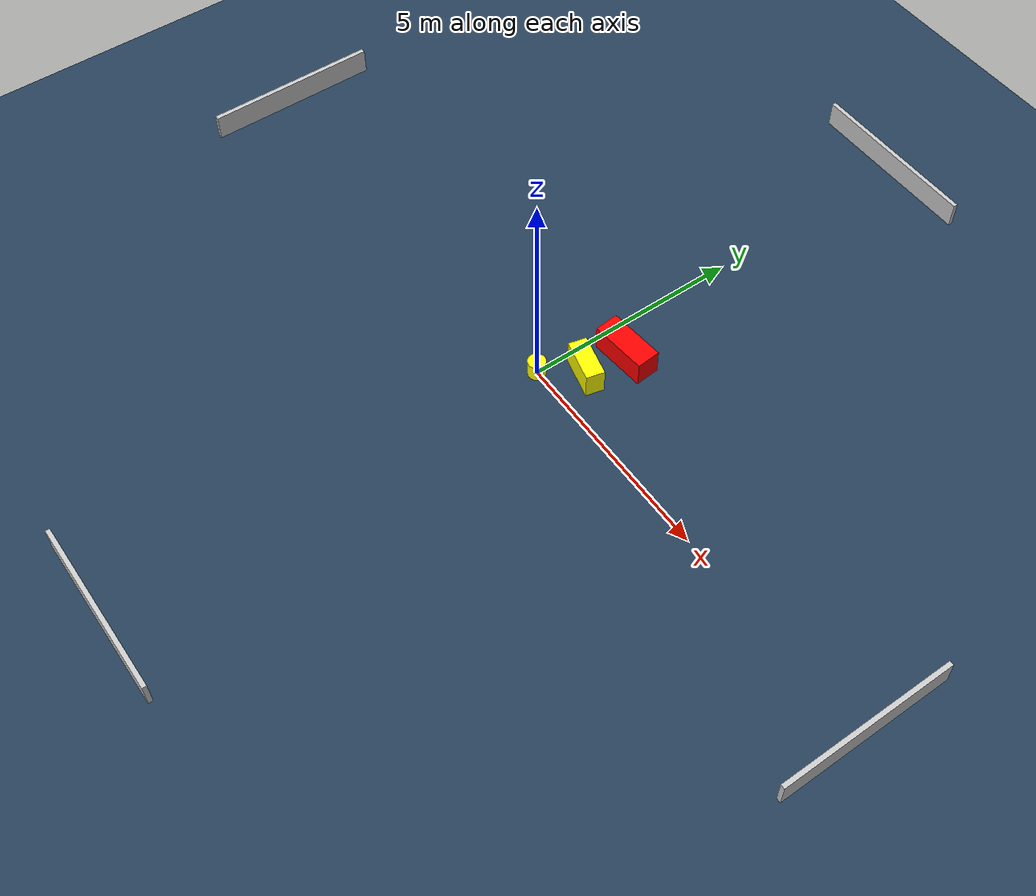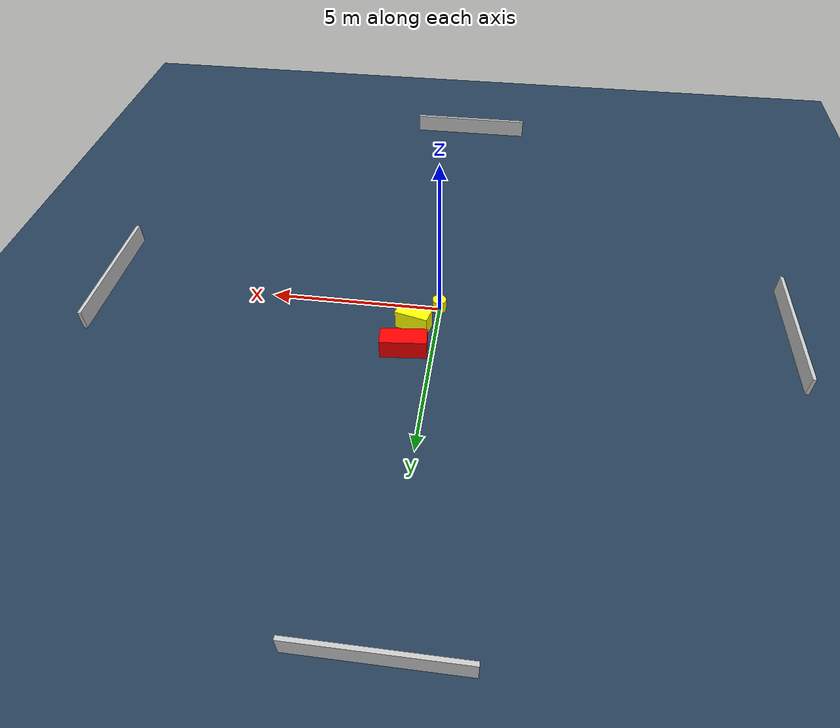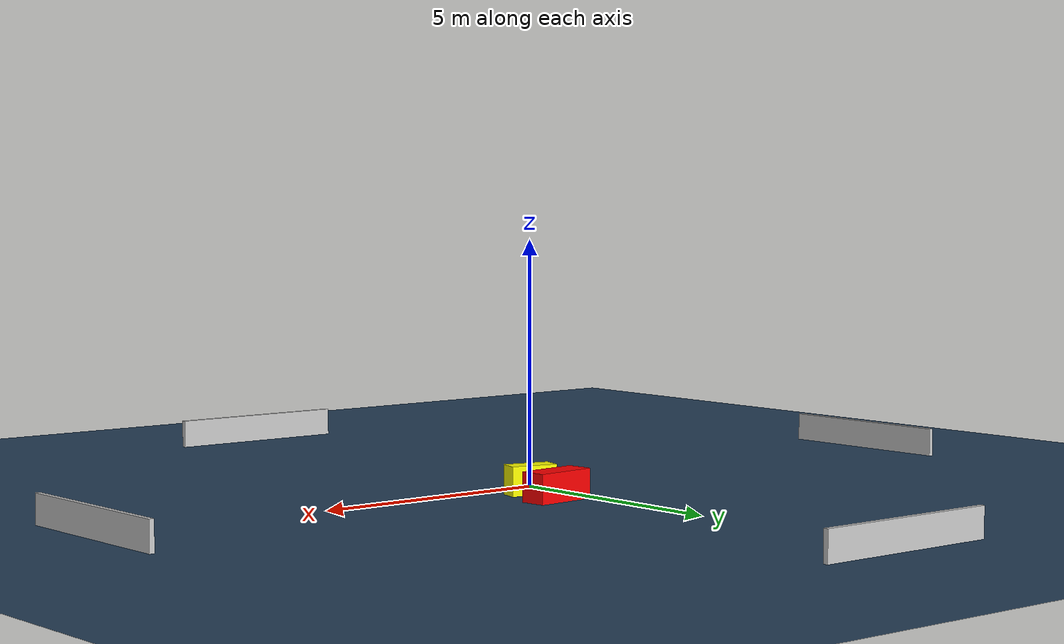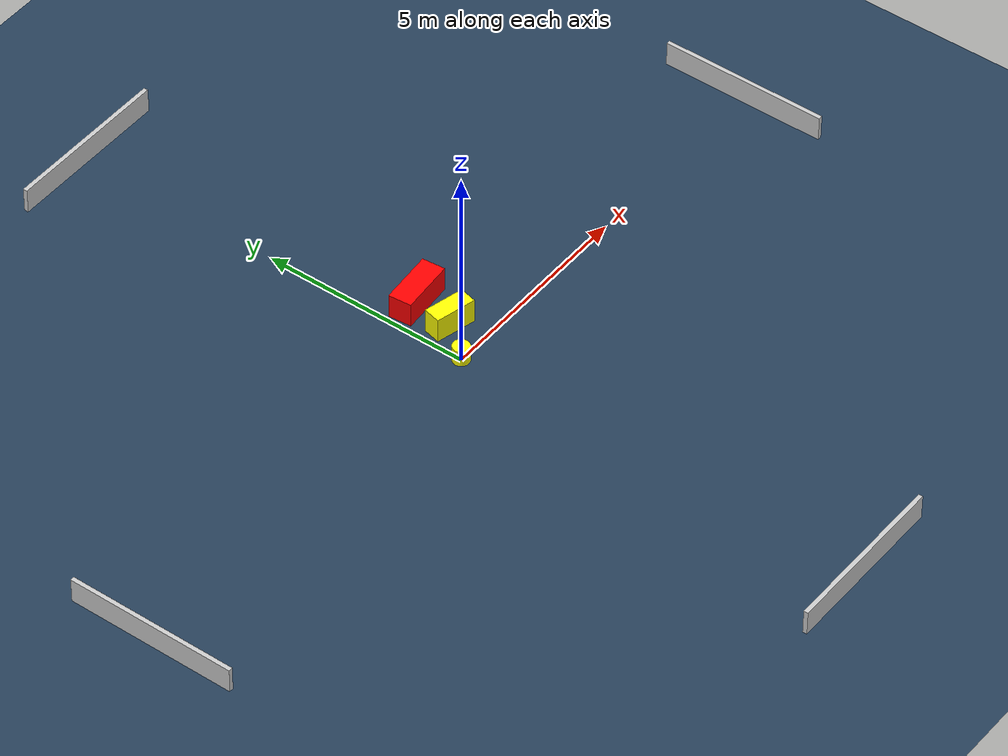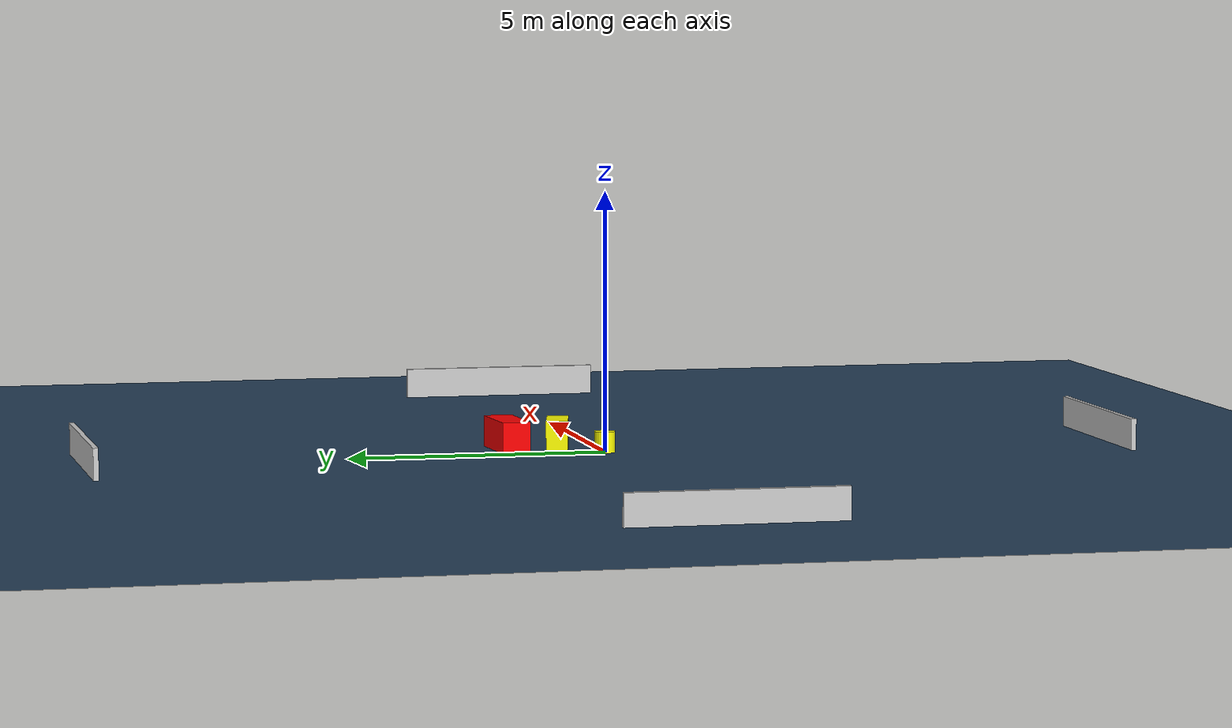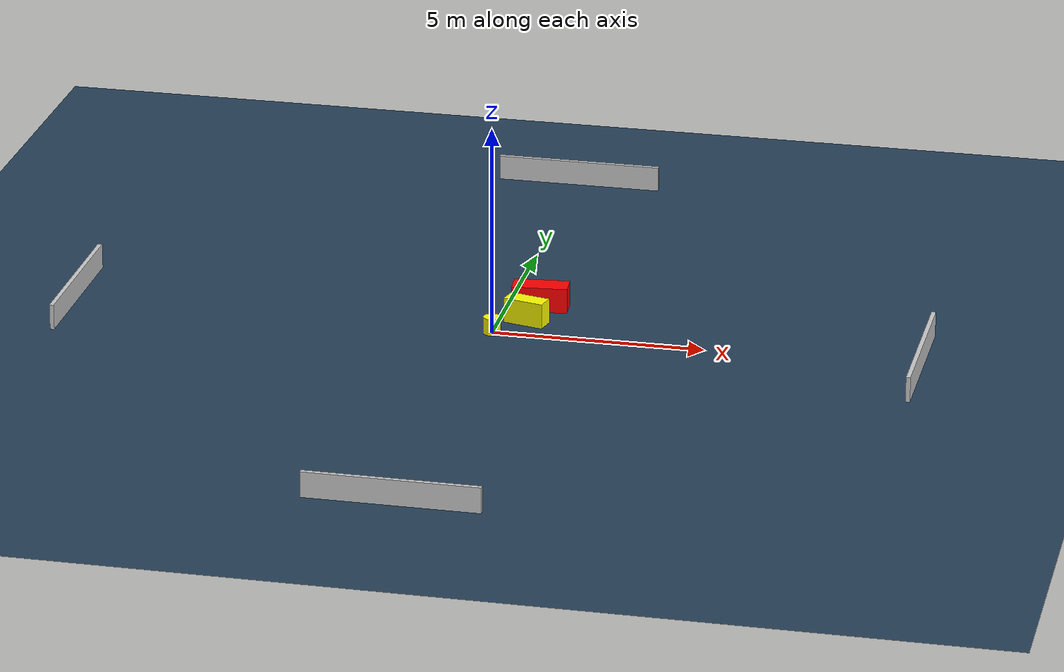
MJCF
<?xml version="1.0" ?>
<mujoco model="generated_environment">
  <option timestep="0.01" integrator="RK4" cone="elliptic"/>
  <default>
    <geom density="1"/>
  </default>
  <asset>
    <texture builtin="gradient" height="3072" name="skybox" rgb1="0.3 0.5 0.7" rgb2="0 0 0" type="skybox" width="512"/>
    <texture builtin="checker" height="300" name="groundplane" rgb1="0.2 0.3 0.4" rgb2="0.1 0.2 0.3" type="2d" width="300"/>
    <material name="groundplane" reflectance="0.2" texrepeat="5 5" texture="groundplane"/>
  </asset>
  <worldbody>
    <light dir="0 0 -1" directional="true" pos="0 0 1.5"/>
    <geom condim="3" friction="0.5 0.005 0.001" material="groundplane" name="floor" pos="0 0 0" size="0 0 0.05" type="plane"/>
    <body name="walls">
      <geom name="wall_1" condim="4" pos="-10.0 0.0 0.3" rgba="0.800000011920929 0.800000011920929 0.800000011920929 1.0" size="0.05 2.0 0.3" type="box"/>
      <geom name="wall_2" condim="4" pos="10.0 0.0 0.3" rgba="0.800000011920929 0.800000011920929 0.800000011920929 1.0" size="0.05 2.0 0.3" type="box"/>
      <geom name="wall_3" condim="4" pos="0.0 -10.0 0.3" rgba="0.800000011920929 0.800000011920929 0.800000011920929 1.0" size="2.0 0.05 0.3" type="box"/>
      <geom name="wall_4" condim="4" pos="0.0 10.0 0.3" rgba="0.800000011920929 0.800000011920929 0.800000011920929 1.0" size="2.0 0.05 0.3" type="box"/>
    </body>
    <body name="robot">
      <joint name="joint_x" type="slide" pos="0 0 0" axis="1 0 0"/>
      <joint name="joint_y" type="slide" pos="0 0 0" axis="0 1 0"/>
      <geom name="robot" type="cylinder" pos="0.0 0.0 0.2" size="0.2 0.2 0.0" mass="5.0" friction="1.0 0.005 0.0001" condim="4" rgba="1.0 1.0 0.0 1.0"/>
    </body>
    <body name="obstacle_1_movable">
      <geom name="obstacle_1_movable" condim="4" pos="0.6494392440746294 0.7897418834966092 0.3" euler="0 0 166.2897129917647" friction="0.0 0.005 0.001" rgba="1.0 1.0 0.0 1.0" size="0.4849679246968623 0.20792199765804797 0.3" type="box" mass="0.1"/>
      <joint type="free"/>
    </body>
    <body name="obstacle_2_static">
      <geom name="obstacle_2_static" condim="4" pos="0.7832427011266725 1.7509647451123374 0.3" euler="0 0 4.865378643808564" friction="0.0 0.005 0.001" rgba="1.0 0.0 0.0 1.0" size="0.6525661993449074 0.2738839542890631 0.3" type="box"/>
    </body>
  </worldbody>
  <actuator>
    <motor name="actuator_x" joint="joint_x" gear="1" ctrlrange="-1 1"/>
    <motor name="actuator_y" joint="joint_y" gear="1" ctrlrange="-1 1"/>
  </actuator>
</mujoco>
